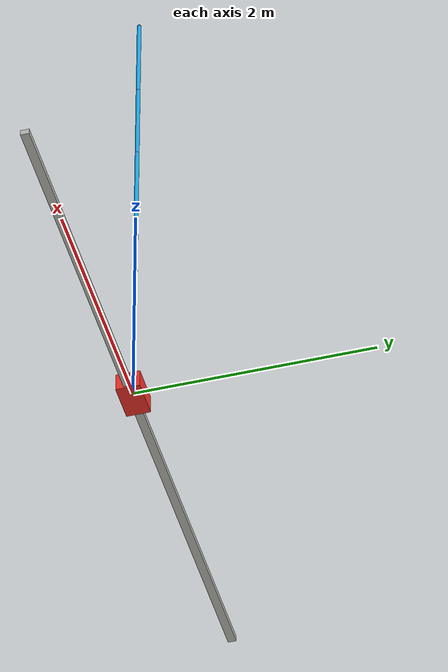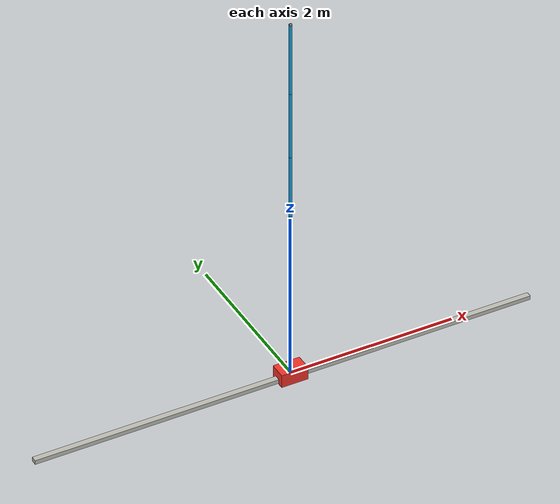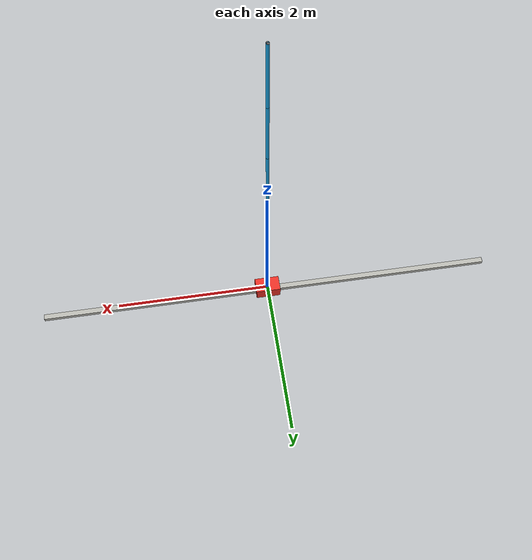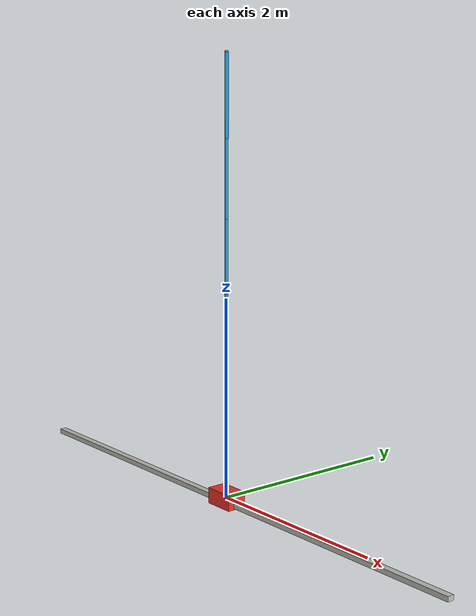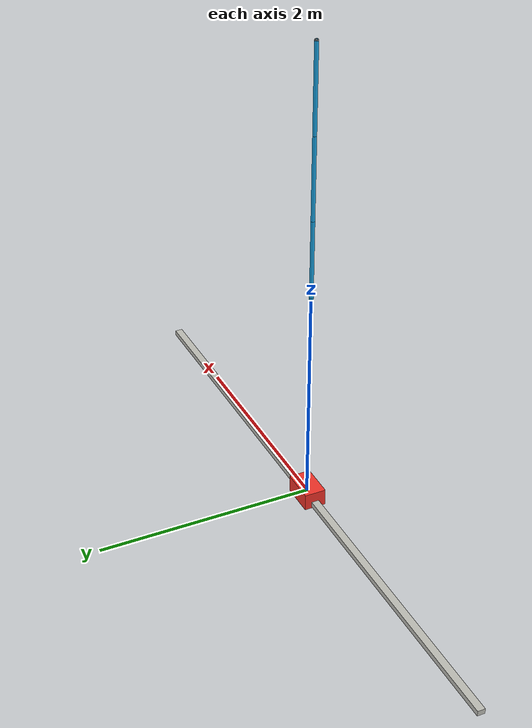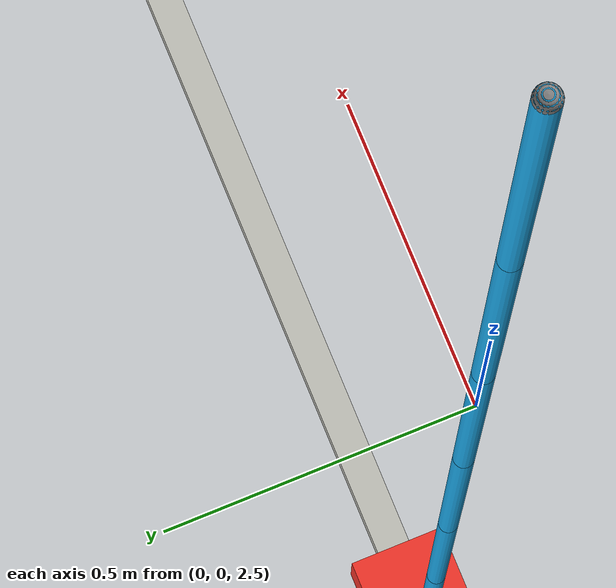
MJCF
<?xml version='1.0' encoding='utf-8'?>
<mujoco model="cartpole_6_link">
  <compiler angle="radian" coordinate="local" />
  <option timestep="0.0025" gravity="0 0 -9.8" />
  <default>
    <joint damping="0" frictionloss="0" armature="0" />
    <geom density="650" friction="0.00001 0 0" contype="0" conaffinity="0" />
  </default>
  <asset>
    <material name="cart" rgba="0.95 0.2 0.16 1" />
    <material name="link" rgba="0.1 0.65 0.9 1" />
    <material name="track" rgba="0.75 0.75 0.72 1" />
  </asset>
  <worldbody>
    <light pos="0 -3 4" dir="0 0 -1" />
    <geom name="rail" type="box" pos="0 0 -0.04" size="3 0.035 0.025" material="track" />
    <body name="cart" pos="0 0 0">
      <joint name="slider" type="slide" axis="1 0 0" limited="true" range="-2.4 2.4" />
      <geom name="cart_box" type="box" size="0.16 0.10 0.08" material="cart" />
      <body name="link_1" pos="0 0 0.08000">
        <joint name="hinge_1" type="hinge" axis="0 1 0" damping="0" frictionloss="0" />
        <geom name="rod_1" type="capsule" fromto="0 0 0 0 0 0.62000" size="0.01800" material="link" />
        <site name="tip_1" pos="0 0 0.62000" size="0.018" />
        <body name="link_2" pos="0 0 0.62000">
          <joint name="hinge_2" type="hinge" axis="0 1 0" damping="0" frictionloss="0" />
          <geom name="rod_2" type="capsule" fromto="0 0 0 0 0 0.65500" size="0.01800" material="link" />
          <site name="tip_2" pos="0 0 0.65500" size="0.018" />
          <body name="link_3" pos="0 0 0.65500">
            <joint name="hinge_3" type="hinge" axis="0 1 0" damping="0" frictionloss="0" />
            <geom name="rod_3" type="capsule" fromto="0 0 0 0 0 0.69000" size="0.01800" material="link" />
            <site name="tip_3" pos="0 0 0.69000" size="0.018" />
            <body name="link_4" pos="0 0 0.69000">
              <joint name="hinge_4" type="hinge" axis="0 1 0" damping="0" frictionloss="0" />
              <geom name="rod_4" type="capsule" fromto="0 0 0 0 0 0.72500" size="0.01800" material="link" />
              <site name="tip_4" pos="0 0 0.72500" size="0.018" />
              <body name="link_5" pos="0 0 0.72500">
                <joint name="hinge_5" type="hinge" axis="0 1 0" damping="0" frictionloss="0" />
                <geom name="rod_5" type="capsule" fromto="0 0 0 0 0 0.76000" size="0.01800" material="link" />
                <site name="tip_5" pos="0 0 0.76000" size="0.018" />
                <body name="link_6" pos="0 0 0.76000">
                  <joint name="hinge_6" type="hinge" axis="0 1 0" damping="0" frictionloss="0" />
                  <geom name="rod_6" type="capsule" fromto="0 0 0 0 0 0.79500" size="0.01800" material="link" />
                  <site name="tip_6" pos="0 0 0.79500" size="0.018" />
                </body>
              </body>
            </body>
          </body>
        </body>
      </body>
    </body>
  </worldbody>
  <actuator>
    <motor name="cart_force" joint="slider" gear="1" ctrllimited="true" ctrlrange="-240 240" />
  </actuator>
  <sensor>
    <jointpos name="cart_x" joint="slider" />
    <jointvel name="cart_v" joint="slider" />
    <jointpos name="theta_1" joint="hinge_1" />
    <jointvel name="omega_1" joint="hinge_1" />
    <jointpos name="theta_2" joint="hinge_2" />
    <jointvel name="omega_2" joint="hinge_2" />
    <jointpos name="theta_3" joint="hinge_3" />
    <jointvel name="omega_3" joint="hinge_3" />
    <jointpos name="theta_4" joint="hinge_4" />
    <jointvel name="omega_4" joint="hinge_4" />
    <jointpos name="theta_5" joint="hinge_5" />
    <jointvel name="omega_5" joint="hinge_5" />
    <jointpos name="theta_6" joint="hinge_6" />
    <jointvel name="omega_6" joint="hinge_6" />
  </sensor>
</mujoco>
